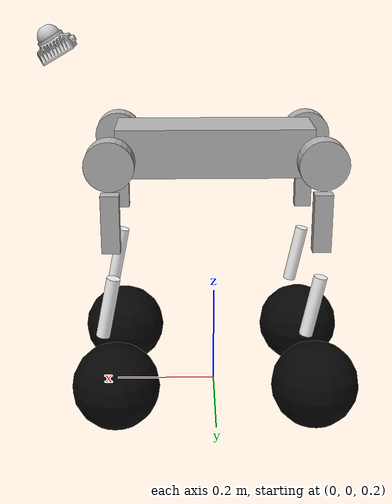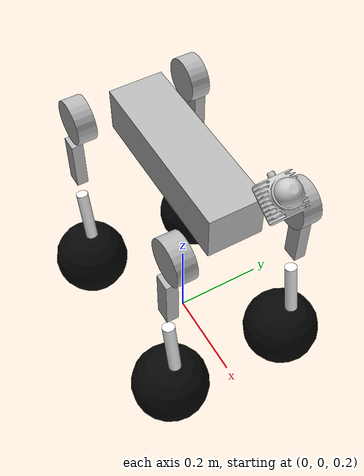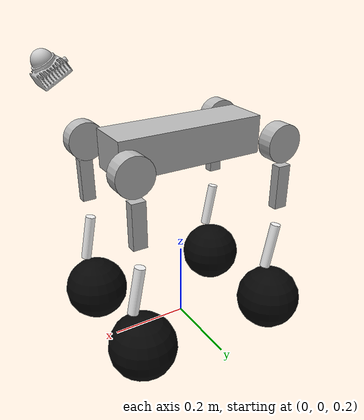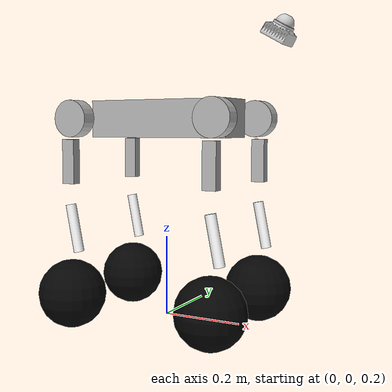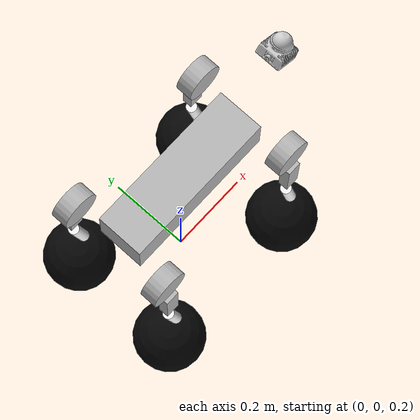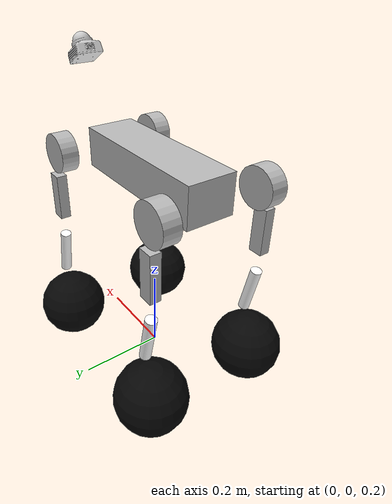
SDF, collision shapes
<?xml version="1.0" ?>
<sdf version="1.6">
  <model name="go2w">
    <static>false</static>
    <pose>0 0 0.7 0 0 0</pose>

    <link name="body">
      <pose>0 0 0 0 0 0</pose>
      <inertial>
        <mass>6.921</mass>
        <pose>0.021112 0.0 -0.005366 0 0 0</pose>
        <inertia>
          <ixx>0.02448</ixx>
          <ixy>0.00012166</ixy>
          <ixz>0.0014849</ixz>
          <iyy>0.098077</iyy>
          <iyz>-3.12e-05</iyz>
          <izz>0.107</izz>
        </inertia>
      </inertial>
      <visual name="body_visual">
        <geometry>
          <mesh>
            <uri>meshes/base.dae</uri>
          </mesh>
        </geometry>
      </visual>
      <collision name="body_collision">
        <geometry>
          <box>
            <size>0.3762 0.114 0.0935</size>
          </box>
        </geometry>
      </collision>
      <sensor name="body_imu" type="imu">
        <always_on>true</always_on>
        <topic>/imu/data</topic>
        <update_rate>100</update_rate>
        <imu>
          <angular_velocity>
            <x>
              <noise type="gaussian">
                <mean>0</mean>
                <stddev>0.0002</stddev>
                <bias_mean>0.0000075</bias_mean>
                <bias_stddev>0.0000008</bias_stddev>
              </noise>
            </x>
            <y>
              <noise type="gaussian">
                <mean>0</mean>
                <stddev>0.0002</stddev>
                <bias_mean>0.0000075</bias_mean>
                <bias_stddev>0.0000008</bias_stddev>
              </noise>
            </y>
            <z>
              <noise type="gaussian">
                <mean>0</mean>
                <stddev>0.0002</stddev>
                <bias_mean>0.0000075</bias_mean>
                <bias_stddev>0.0000008</bias_stddev>
              </noise>
            </z>
          </angular_velocity>
          <linear_acceleration>
            <x>
              <noise type="gaussian">
                <mean>0</mean>
                <stddev>0.017</stddev>
                <bias_mean>0.1</bias_mean>
                <bias_stddev>0.001</bias_stddev>
              </noise>
            </x>
            <y>
              <noise type="gaussian">
                <mean>0</mean>
                <stddev>0.017</stddev>
                <bias_mean>0.1</bias_mean>
                <bias_stddev>0.001</bias_stddev>
              </noise>
            </y>
            <z>
              <noise type="gaussian">
                <mean>0</mean>
                <stddev>0.017</stddev>
                <bias_mean>0.1</bias_mean>
                <bias_stddev>0.001</bias_stddev>
              </noise>
            </z>
          </linear_acceleration>
        </imu>
      </sensor>
    </link>

    <!-- Front Left Leg -->
    <link name="FL_hip">
      <pose>0.1934 0.0465 0 0 0 0</pose>
      <inertial>
        <mass>0.678</mass>
        <pose>-0.0054 0.00194 -0.000105 0 0 0</pose>
        <inertia>
          <ixx>0.00048</ixx>
          <ixy>-3.01e-06</ixy>
          <ixz>1.11e-06</ixz>
          <iyy>0.000884</iyy>
          <iyz>-1.42e-06</iyz>
          <izz>0.000596</izz>
        </inertia>
      </inertial>
      <visual name="FL_hip_visual">
        <geometry>
          <mesh>
            <uri>meshes/hip.dae</uri>
          </mesh>
        </geometry>
      </visual>
      <collision name="FL_hip_collision">
        <pose>0 0.08 0 1.5708 0 0</pose>
        <geometry>
          <cylinder>
            <radius>0.046</radius>
            <length>0.04</length>
          </cylinder>
        </geometry>
      </collision>
    </link>

    <joint name="FL_hip_joint" type="revolute">
      <parent>body</parent>
      <child>FL_hip</child>
      <axis>
        <xyz>1 0 0</xyz>
        <limit>
          <lower>-1.0472</lower>
          <upper>1.0472</upper>
          <effort>23.7</effort>
          <velocity>30.1</velocity>
        </limit>
        <dynamics>
          <damping>0.1</damping>
          <friction>0.2</friction>
        </dynamics>
      </axis>
    </joint>

    <link name="FL_thigh">
      <pose>0.1934 0.142 0 0 0 0</pose>
      <inertial>
        <mass>1.152</mass>
        <pose>-0.00374 -0.0223 -0.0327 0 0 0</pose>
        <inertia>
          <ixx>0.00584</ixx>
          <ixy>8.72e-05</ixy>
          <ixz>-0.000289</ixz>
          <iyy>0.0058</iyy>
          <iyz>0.000808</iyz>
          <izz>0.00103</izz>
        </inertia>
      </inertial>
      <visual name="FL_thigh_visual">
        <geometry>
          <mesh>
            <uri>meshes/thigh.dae</uri>
          </mesh>
        </geometry>
      </visual>
      <collision name="FL_thigh_collision">
        <pose>0 0 -0.1065 0 1.5708 0</pose>
        <geometry>
          <box>
            <size>0.11 0.0245 0.034</size>
          </box>
        </geometry>
      </collision>
    </link>

    <joint name="FL_thigh_joint" type="revolute">
      <parent>FL_hip</parent>
      <child>FL_thigh</child>
      <axis>
        <xyz>0 1 0</xyz>
        <limit>
          <lower>-1.5708</lower>
          <upper>3.4907</upper>
          <effort>23.7</effort>
          <velocity>30.1</velocity>
        </limit>
        <dynamics>
          <damping>0.1</damping>
          <friction>0.2</friction>
        </dynamics>
      </axis>
    </joint>

    <link name="FL_calf">
      <pose>0.1934 0.142 -0.213 0 0 0</pose>
      <inertial>
        <mass>0.154</mass>
        <pose>0.00548 -0.000975 -0.115 0 0 0</pose>
        <inertia>
          <ixx>0.00108</ixx>
          <ixy>3.4e-07</ixy>
          <ixz>1.72e-05</ixz>
          <iyy>0.0011</iyy>
          <iyz>8.28e-06</iyz>
          <izz>3.29e-05</izz>
        </inertia>
      </inertial>
      <visual name="FL_calf_visual">
        <geometry>
          <mesh>
            <uri>meshes/calf.stl</uri>
          </mesh>
        </geometry>
        <material>
          <ambient>1 1 1 1</ambient>
          <diffuse>1 1 1 1</diffuse>
          <specular>0.8 0.8 0.8 1</specular>
          <emissive>0.1 0.1 0.1 1</emissive>
        </material>
      </visual>
      <collision name="FL_calf_collision">
        <pose>0.01 0 -0.06 0 -0.2 0</pose>
        <geometry>
          <cylinder>
            <radius>0.013</radius>
            <length>0.12</length>
          </cylinder>
        </geometry>
      </collision>
    </link>

    <joint name="FL_calf_joint" type="revolute">
      <parent>FL_thigh</parent>
      <child>FL_calf</child>
      <axis>
        <xyz>0 1 0</xyz>
        <limit>
          <lower>-2.7227</lower>
          <upper>-0.83776</upper>
          <effort>35.55</effort>
          <velocity>20.06</velocity>
        </limit>
        <dynamics>
          <damping>0.1</damping>
          <friction>0.2</friction>
        </dynamics>
      </axis>
    </joint>

    <link name="FL_foot">
      <pose>0.1934 0.142 -0.4394 0 0 0</pose>
      <inertial>
        <mass>0.520</mass>
        <pose>0 0.06 0 0 0 0</pose>
        <inertia>
          <ixx>0.0007</ixx>
          <ixy>0</ixy>
          <ixz>0</ixz>
          <iyy>0.0012</iyy>
          <iyz>0</iyz>
          <izz>0.0012</izz>
        </inertia>
      </inertial>
      <visual name="FL_foot_visual">
        <geometry>
          <mesh>
            <uri>meshes/left_wheel.dae</uri>
          </mesh>
        </geometry>
        <material>
          <ambient>0.023455 0.023455 0.023455 1</ambient>
          <diffuse>0.023455 0.023455 0.023455 1</diffuse>
          <specular>0.8 0.8 0.8 1</specular>
          <emissive>0.1 0.1 0.1 1</emissive>
        </material>
      </visual>
      <collision name="FL_foot_collision">
        <geometry>
          <sphere>
            <radius>0.085</radius>
          </sphere>
        </geometry>
        <surface>
          <friction>
            <ode>
              <mu>0.3</mu>
              <mu2>0.3</mu2>
              <slip1>0.0</slip1>
              <slip2>0.0</slip2>
            </ode>
          </friction>
        </surface>
      </collision>
    </link>

    <joint name="FL_foot_joint" type="revolute">
      <parent>FL_calf</parent>
      <child>FL_foot</child>
      <axis>
        <xyz>0 1 0</xyz>
        <limit>
          <lower>-1e16</lower>
          <upper>1e16</upper>
          <effort>23.7</effort>
          <velocity>30.1</velocity>
        </limit>
        <dynamics>
          <damping>0.01</damping>
          <friction>0.05</friction>
        </dynamics>
      </axis>
    </joint>

    <!-- Front Right Leg -->
    <link name="FR_hip">
      <pose>0.1934 -0.0465 0 0 0 0</pose>
      <inertial>
        <mass>0.678</mass>
        <pose>-0.0054 -0.00194 -0.000105 0 0 0</pose>
        <inertia>
          <ixx>0.00048</ixx>
          <ixy>3.01e-06</ixy>
          <ixz>-1.11e-06</ixz>
          <iyy>0.000884</iyy>
          <iyz>1.42e-06</iyz>
          <izz>0.000596</izz>
        </inertia>
      </inertial>
      <visual name="FR_hip_visual">
        <pose>0 0 0 0 3.14159 3.14159</pose>
        <geometry>
          <mesh>
            <uri>meshes/hip.dae</uri>
          </mesh>
        </geometry>
      </visual>
      <collision name="FR_hip_collision">
        <pose>0 -0.08 0 1.5708 0 0</pose>
        <geometry>
          <cylinder>
            <radius>0.046</radius>
            <length>0.04</length>
          </cylinder>
        </geometry>
      </collision>
    </link>

    <joint name="FR_hip_joint" type="revolute">
      <parent>body</parent>
      <child>FR_hip</child>
      <axis>
        <xyz>1 0 0</xyz>
        <limit>
          <lower>-1.0472</lower>
          <upper>1.0472</upper>
          <effort>23.7</effort>
          <velocity>30.1</velocity>
        </limit>
        <dynamics>
          <damping>0.1</damping>
          <friction>0.2</friction>
        </dynamics>
      </axis>
    </joint>

    <link name="FR_thigh">
      <pose>0.1934 -0.142 0 0 0 0</pose>
      <inertial>
        <mass>1.152</mass>
        <pose>-0.00374 0.0223 -0.0327 0 0 0</pose>
        <inertia>
          <ixx>0.00584</ixx>
          <ixy>-8.72e-05</ixy>
          <ixz>0.000289</ixz>
          <iyy>0.0058</iyy>
          <iyz>-0.000808</iyz>
          <izz>0.00103</izz>
        </inertia>
      </inertial>
      <visual name="FR_thigh_visual">
        <geometry>
          <mesh>
            <uri>meshes/thigh_mirror.dae</uri>
          </mesh>
        </geometry>
      </visual>
      <collision name="FR_thigh_collision">
        <pose>0 0 -0.1065 0 1.5708 0</pose>
        <geometry>
          <box>
            <size>0.11 0.0245 0.034</size>
          </box>
        </geometry>
      </collision>
    </link>

    <joint name="FR_thigh_joint" type="revolute">
      <parent>FR_hip</parent>
      <child>FR_thigh</child>
      <axis>
        <xyz>0 1 0</xyz>
        <limit>
          <lower>-1.5708</lower>
          <upper>3.4907</upper>
          <effort>23.7</effort>
          <velocity>30.1</velocity>
        </limit>
        <dynamics>
          <damping>0.1</damping>
          <friction>0.2</friction>
        </dynamics>
      </axis>
    </joint>

    <link name="FR_calf">
      <pose>0.1934 -0.142 -0.213 0 0 0</pose>
      <inertial>
        <mass>0.154</mass>
        <pose>0.00548 0.000975 -0.115 0 0 0</pose>
        <inertia>
          <ixx>0.00108</ixx>
          <ixy>-3.4e-07</ixy>
          <ixz>-1.72e-05</ixz>
          <iyy>0.0011</iyy>
          <iyz>-8.28e-06</iyz>
          <izz>3.29e-05</izz>
        </inertia>
      </inertial>
      <visual name="FR_calf_visual">
        <geometry>
          <mesh>
            <uri>meshes/calf_mirror.stl</uri>
          </mesh>
        </geometry>
        <material>
          <ambient>1 1 1 1</ambient>
          <diffuse>1 1 1 1</diffuse>
          <specular>0.8 0.8 0.8 1</specular>
          <emissive>0.1 0.1 0.1 1</emissive>
        </material>
      </visual>
      <collision name="FR_calf_collision">
        <pose>0.01 0 -0.06 0 -0.2 0</pose>
        <geometry>
          <cylinder>
            <radius>0.013</radius>
            <length>0.12</length>
          </cylinder>
        </geometry>
      </collision>
    </link>

    <joint name="FR_calf_joint" type="revolute">
      <parent>FR_thigh</parent>
      <child>FR_calf</child>
      <axis>
        <xyz>0 1 0</xyz>
        <limit>
          <lower>-2.7227</lower>
          <upper>-0.83776</upper>
          <effort>35.55</effort>
          <velocity>20.06</velocity>
        </limit>
        <dynamics>
          <damping>0.1</damping>
          <friction>0.2</friction>
        </dynamics>
      </axis>
    </joint>

    <link name="FR_foot">
      <pose>0.1934 -0.142 -0.4394 0 0 0</pose>
      <inertial>
        <mass>0.520</mass>
        <pose>0 -0.06 0 0 0 0</pose>
        <inertia>
          <ixx>0.0007</ixx>
          <ixy>0</ixy>
          <ixz>0</ixz>
          <iyy>0.0012</iyy>
          <iyz>0</iyz>
          <izz>0.0012</izz>
        </inertia>
      </inertial>
      <visual name="FR_foot_visual">
        <geometry>
          <mesh>
            <uri>meshes/right_wheel.dae</uri>
          </mesh>
        </geometry>
        <material>
          <ambient>0.023455 0.023455 0.023455 1</ambient>
          <diffuse>0.023455 0.023455 0.023455 1</diffuse>
          <specular>0.8 0.8 0.8 1</specular>
          <emissive>0.1 0.1 0.1 1</emissive>
        </material>
      </visual>
      <collision name="FR_foot_collision">
        <geometry>
          <sphere>
            <radius>0.085</radius>
          </sphere>
        </geometry>
        <surface>
          <friction>
            <ode>
              <mu>0.3</mu>
              <mu2>0.3</mu2>
              <slip1>0.0</slip1>
              <slip2>0.0</slip2>
            </ode>
          </friction>
        </surface>
      </collision>
    </link>

    <joint name="FR_foot_joint" type="revolute">
      <parent>FR_calf</parent>
      <child>FR_foot</child>
      <axis>
        <xyz>0 1 0</xyz>
        <limit>
          <lower>-1e16</lower>
          <upper>1e16</upper>
          <effort>23.7</effort>
          <velocity>30.1</velocity>
        </limit>
        <dynamics>
          <damping>0.01</damping>
          <friction>0.05</friction>
        </dynamics>
      </axis>
    </joint>

    <!-- Rear Left Leg -->
    <link name="RL_hip">
      <pose>-0.1934 0.0465 0 0 0 0</pose>
      <inertial>
        <mass>0.678</mass>
        <pose>0.0054 0.00194 -0.000105 0 0 0</pose>
        <inertia>
          <ixx>0.00048</ixx>
          <ixy>3.01e-06</ixy>
          <ixz>-1.11e-06</ixz>
          <iyy>0.000884</iyy>
          <iyz>1.42e-06</iyz>
          <izz>0.000596</izz>
        </inertia>
      </inertial>
      <visual name="RL_hip_visual">
        <pose>0 0 0 0 3.14159 0</pose>
        <geometry>
          <mesh>
            <uri>meshes/hip.dae</uri>
          </mesh>
        </geometry>
      </visual>
      <collision name="RL_hip_collision">
        <pose>0 0.08 0 1.5708 0 0</pose>
        <geometry>
          <cylinder>
            <radius>0.046</radius>
            <length>0.04</length>
          </cylinder>
        </geometry>
      </collision>
    </link>

    <joint name="RL_hip_joint" type="revolute">
      <parent>body</parent>
      <child>RL_hip</child>
      <axis>
        <xyz>1 0 0</xyz>
        <limit>
          <lower>-1.0472</lower>
          <upper>1.0472</upper>
          <effort>23.7</effort>
          <velocity>30.1</velocity>
        </limit>
        <dynamics>
          <damping>0.1</damping>
          <friction>0.2</friction>
        </dynamics>
      </axis>
    </joint>

    <link name="RL_thigh">
      <pose>-0.1934 0.142 0 0 0 0</pose>
      <inertial>
        <mass>1.152</mass>
        <pose>0.00374 -0.0223 -0.0327 0 0 0</pose>
        <inertia>
          <ixx>0.00584</ixx>
          <ixy>-8.72e-05</ixy>
          <ixz>0.000289</ixz>
          <iyy>0.0058</iyy>
          <iyz>-0.000808</iyz>
          <izz>0.00103</izz>
        </inertia>
      </inertial>
      <visual name="RL_thigh_visual">
        <geometry>
          <mesh>
            <uri>meshes/thigh.dae</uri>
          </mesh>
        </geometry>
      </visual>
      <collision name="RL_thigh_collision">
        <pose>0 0 -0.1065 0 1.5708 0</pose>
        <geometry>
          <box>
            <size>0.11 0.0245 0.034</size>
          </box>
        </geometry>
      </collision>
    </link>

    <joint name="RL_thigh_joint" type="revolute">
      <parent>RL_hip</parent>
      <child>RL_thigh</child>
      <axis>
        <xyz>0 1 0</xyz>
        <limit>
          <lower>-1.5708</lower>
          <upper>3.4907</upper>
          <effort>23.7</effort>
          <velocity>30.1</velocity>
        </limit>
        <dynamics>
          <damping>0.1</damping>
          <friction>0.2</friction>
        </dynamics>
      </axis>
    </joint>

    <link name="RL_calf">
      <pose>-0.1934 0.142 -0.213 0 0 0</pose>
      <inertial>
        <mass>0.154</mass>
        <pose>-0.00548 -0.000975 -0.115 0 0 0</pose>
        <inertia>
          <ixx>0.00108</ixx>
          <ixy>-3.4e-07</ixy>
          <ixz>-1.72e-05</ixz>
          <iyy>0.0011</iyy>
          <iyz>-8.28e-06</iyz>
          <izz>3.29e-05</izz>
        </inertia>
      </inertial>
      <visual name="RL_calf_visual">
        <geometry>
          <mesh>
            <uri>meshes/calf.stl</uri>
          </mesh>
        </geometry>
        <material>
          <ambient>1 1 1 1</ambient>
          <diffuse>1 1 1 1</diffuse>
          <specular>0.8 0.8 0.8 1</specular>
          <emissive>0.1 0.1 0.1 1</emissive>
        </material>
      </visual>
      <collision name="RL_calf_collision">
        <pose>0.01 0 -0.06 0 -0.2 0</pose>
        <geometry>
          <cylinder>
            <radius>0.013</radius>
            <length>0.12</length>
          </cylinder>
        </geometry>
      </collision>
    </link>

    <joint name="RL_calf_joint" type="revolute">
      <parent>RL_thigh</parent>
      <child>RL_calf</child>
      <axis>
        <xyz>0 1 0</xyz>
        <limit>
          <lower>-2.7227</lower>
          <upper>-0.83776</upper>
          <effort>35.55</effort>
          <velocity>20.06</velocity>
        </limit>
        <dynamics>
          <damping>0.1</damping>
          <friction>0.2</friction>
        </dynamics>
      </axis>
    </joint>

    <link name="RL_foot">
      <pose>-0.1934 0.142 -0.4394 0 0 0</pose>
      <inertial>
        <mass>0.520</mass>
        <pose>0 0.06 0 0 0 0</pose>
        <inertia>
          <ixx>0.0007</ixx>
          <ixy>0</ixy>
          <ixz>0</ixz>
          <iyy>0.0012</iyy>
          <iyz>0</iyz>
          <izz>0.0012</izz>
        </inertia>
      </inertial>
      <visual name="RL_foot_visual">
        <geometry>
          <mesh>
            <uri>meshes/left_wheel.dae</uri>
          </mesh>
        </geometry>
        <material>
          <ambient>0.023455 0.023455 0.023455 1</ambient>
          <diffuse>0.023455 0.023455 0.023455 1</diffuse>
          <specular>0.8 0.8 0.8 1</specular>
          <emissive>0.1 0.1 0.1 1</emissive>
        </material>
      </visual>
      <collision name="RL_foot_collision">
        <geometry>
          <sphere>
            <radius>0.085</radius>
          </sphere>
        </geometry>
        <surface>
          <friction>
            <ode>
              <mu>0.3</mu>
              <mu2>0.3</mu2>
              <slip1>0.0</slip1>
              <slip2>0.0</slip2>
            </ode>
          </friction>
        </surface>
      </collision>
    </link>

    <joint name="RL_foot_joint" type="revolute">
      <parent>RL_calf</parent>
      <child>RL_foot</child>
      <axis>
        <xyz>0 1 0</xyz>
        <limit>
          <lower>-1e16</lower>
          <upper>1e16</upper>
          <effort>23.7</effort>
          <velocity>30.1</velocity>
        </limit>
        <dynamics>
          <damping>0.01</damping>
          <friction>0.05</friction>
        </dynamics>
      </axis>
    </joint>

    <!-- Rear Right Leg -->
    <link name="RR_hip">
      <pose>-0.1934 -0.0465 0 0 0 0</pose>
      <inertial>
        <mass>0.678</mass>
        <pose>0.0054 -0.00194 -0.000105 0 0 0</pose>
        <inertia>
          <ixx>0.00048</ixx>
          <ixy>-3.01e-06</ixy>
          <ixz>1.11e-06</ixz>
          <iyy>0.000884</iyy>
          <iyz>-1.42e-06</iyz>
          <izz>0.000596</izz>
        </inertia>
      </inertial>
      <visual name="RR_hip_visual">
        <pose>0 0 0 3.14159 3.14159 0</pose>
        <geometry>
          <mesh>
            <uri>meshes/hip.dae</uri>
          </mesh>
        </geometry>
      </visual>
      <collision name="RR_hip_collision">
        <pose>0 -0.08 0 1.5708 0 0</pose>
        <geometry>
          <cylinder>
            <radius>0.046</radius>
            <length>0.04</length>
          </cylinder>
        </geometry>
      </collision>
    </link>

    <joint name="RR_hip_joint" type="revolute">
      <parent>body</parent>
      <child>RR_hip</child>
      <axis>
        <xyz>1 0 0</xyz>
        <limit>
          <lower>-1.0472</lower>
          <upper>1.0472</upper>
          <effort>23.7</effort>
          <velocity>30.1</velocity>
        </limit>
        <dynamics>
          <damping>0.1</damping>
          <friction>0.2</friction>
        </dynamics>
      </axis>
    </joint>

    <link name="RR_thigh">
      <pose>-0.1934 -0.142 0 0 0 0</pose>
      <inertial>
        <mass>1.152</mass>
        <pose>0.00374 0.0223 -0.0327 0 0 0</pose>
        <inertia>
          <ixx>0.00584</ixx>
          <ixy>8.72e-05</ixy>
          <ixz>-0.000289</ixz>
          <iyy>0.0058</iyy>
          <iyz>0.000808</iyz>
          <izz>0.00103</izz>
        </inertia>
      </inertial>
      <visual name="RR_thigh_visual">
        <geometry>
          <mesh>
            <uri>meshes/thigh_mirror.dae</uri>
          </mesh>
        </geometry>
      </visual>
      <collision name="RR_thigh_collision">
        <pose>0 0 -0.1065 0 1.5708 0</pose>
        <geometry>
          <box>
            <size>0.11 0.0245 0.034</size>
          </box>
        </geometry>
      </collision>
    </link>

    <joint name="RR_thigh_joint" type="revolute">
      <parent>RR_hip</parent>
      <child>RR_thigh</child>
      <axis>
        <xyz>0 1 0</xyz>
        <limit>
          <lower>-1.5708</lower>
          <upper>3.4907</upper>
          <effort>23.7</effort>
          <velocity>30.1</velocity>
        </limit>
        <dynamics>
          <damping>0.1</damping>
          <friction>0.2</friction>
        </dynamics>
      </axis>
    </joint>

    <link name="RR_calf">
      <pose>-0.1934 -0.142 -0.213 0 0 0</pose>
      <inertial>
        <mass>0.154</mass>
        <pose>-0.00548 0.000975 -0.115 0 0 0</pose>
        <inertia>
          <ixx>0.00108</ixx>
          <ixy>3.4e-07</ixy>
          <ixz>1.72e-05</ixz>
          <iyy>0.0011</iyy>
          <iyz>8.28e-06</iyz>
          <izz>3.29e-05</izz>
        </inertia>
      </inertial>
      <visual name="RR_calf_visual">
        <geometry>
          <mesh>
            <uri>meshes/calf_mirror.stl</uri>
          </mesh>
        </geometry>
        <material>
          <ambient>1 1 1 1</ambient>
          <diffuse>1 1 1 1</diffuse>
          <specular>0.8 0.8 0.8 1</specular>
          <emissive>0.1 0.1 0.1 1</emissive>
        </material>
      </visual>
      <collision name="RR_calf_collision">
        <pose>0.01 0 -0.06 0 -0.2 0</pose>
        <geometry>
          <cylinder>
            <radius>0.013</radius>
            <length>0.12</length>
          </cylinder>
        </geometry>
      </collision>
    </link>

    <joint name="RR_calf_joint" type="revolute">
      <parent>RR_thigh</parent>
      <child>RR_calf</child>
      <axis>
        <xyz>0 1 0</xyz>
        <limit>
          <lower>-2.7227</lower>
          <upper>-0.83776</upper>
          <effort>35.55</effort>
          <velocity>20.06</velocity>
        </limit>
        <dynamics>
          <damping>0.1</damping>
          <friction>0.2</friction>
        </dynamics>
      </axis>
    </joint>

    <link name="RR_foot">
      <pose>-0.1934 -0.142 -0.4394 0 0 0</pose>
      <inertial>
        <mass>0.520</mass>
        <pose>0 -0.06 0 0 0 0</pose>
        <inertia>
          <ixx>0.0007</ixx>
          <ixy>0</ixy>
          <ixz>0</ixz>
          <iyy>0.0012</iyy>
          <iyz>0</iyz>
          <izz>0.0012</izz>
        </inertia>
      </inertial>
      <visual name="RR_foot_visual">
        <geometry>
          <mesh>
            <uri>meshes/right_wheel.dae</uri>
          </mesh>
        </geometry>
        <material>
          <ambient>0.023455 0.023455 0.023455 1</ambient>
          <diffuse>0.023455 0.023455 0.023455 1</diffuse>
          <specular>0.8 0.8 0.8 1</specular>
          <emissive>0.1 0.1 0.1 1</emissive>
        </material>
      </visual>
      <collision name="RR_foot_collision">
        <geometry>
          <sphere>
            <radius>0.085</radius>
          </sphere>
        </geometry>
        <surface>
          <friction>
            <ode>
              <mu>0.3</mu>
              <mu2>0.3</mu2>
              <slip1>0.0</slip1>
              <slip2>0.0</slip2>
            </ode>
          </friction>
        </surface>
      </collision>
    </link>

    <joint name="RR_foot_joint" type="revolute">
      <parent>RR_calf</parent>
      <child>RR_foot</child>
      <axis>
        <xyz>0 1 0</xyz>
        <limit>
          <lower>-1e16</lower>
          <upper>1e16</upper>
          <effort>23.7</effort>
          <velocity>30.1</velocity>
        </limit>
        <dynamics>
          <damping>0.01</damping>
          <friction>0.05</friction>
        </dynamics>
      </axis>
    </joint>

    <!-- Mid360 Livox -->
    <link name="livox_frame">
      <pose>0.3 0 0.20 0 -0.5236 3.14159</pose>
      <inertial>
        <mass>0.4</mass>
        <pose>0 0 0 0 0 0</pose>
        <inertia>
          <ixx>0.0004</ixx>
          <ixy>0</ixy>
          <ixz>0</ixz>
          <iyy>0.0004</iyy>
          <iyz>0</iyz>
          <izz>0.0004</izz>
        </inertia>
      </inertial>
      <visual name="livox_frame_visual">
        <geometry>
          <mesh>
            <uri>meshes/mid-360-scaled.dae</uri>
          </mesh>
        </geometry>
      </visual>
      <collision name="livox_frame_collision">
        <geometry>
          <mesh>
            <uri>meshes/mid-360-scaled.dae</uri>
          </mesh>
        </geometry>
      </collision>

      <sensor name="mid360_lidar" type="gpu_lidar">
        <topic>/livox/lidar</topic>
        <update_rate>10</update_rate>
        <always_on>true</always_on>
        <visualize>false</visualize>
        <lidar>
          <scan>
            <horizontal>
              <samples>720</samples>
              <resolution>1</resolution>
              <min_angle>0</min_angle>
              <max_angle>6.283185307</max_angle>
            </horizontal>
            <vertical>
              <samples>120</samples>
              <resolution>1</resolution>
              <min_angle>-0.126012</min_angle>
              <max_angle>0.963771</max_angle>
            </vertical>
          </scan>
          <range>
            <min>0.1</min>
            <max>100.0</max>
            <resolution>0.005</resolution>
          </range>
          <noise>
            <type>gaussian</type>
            <mean>0.0</mean>
            <stddev>0.002</stddev>
          </noise>
        </lidar>
      </sensor>

      <sensor name="mid360_imu" type="imu">
        <topic>/livox/imu</topic>
        <update_rate>200</update_rate>
        <always_on>true</always_on>
        <visualize>false</visualize>
        <imu>
          <angular_velocity>
            <x>
              <noise type="gaussian">
                <mean>0</mean>
                <stddev>2e-4</stddev>
              </noise>
            </x>
            <y>
              <noise type="gaussian">
                <mean>0</mean>
                <stddev>2e-4</stddev>
              </noise>
            </y>
            <z>
              <noise type="gaussian">
                <mean>0</mean>
                <stddev>2e-4</stddev>
              </noise>
            </z>
          </angular_velocity>
          <linear_acceleration>
            <x>
              <noise type="gaussian">
                <mean>0</mean>
                <stddev>0.017</stddev>
              </noise>
            </x>
            <y>
              <noise type="gaussian">
                <mean>0</mean>
                <stddev>0.017</stddev>
              </noise>
            </y>
            <z>
              <noise type="gaussian">
                <mean>0</mean>
                <stddev>0.017</stddev>
              </noise>
            </z>
          </linear_acceleration>
        </imu>
      </sensor>
    </link>

    <joint name="livox_frame_joint" type="fixed">
      <parent>body</parent>
      <child>livox_frame</child>
    </joint>

    <!-- Plugins -->
    <plugin name="gz_ros2_control::GazeboSimROS2ControlPlugin" filename="gz_ros2_control-system">
      <parameters>/home/ywj/git/3d_dog_navi_ros2/install/go2w_description/share/go2w_description/config/joint_controller.yaml</parameters>
      <controller_manager_node_name>controller_manager</controller_manager_node_name>
    </plugin>
  </model>
</sdf>
